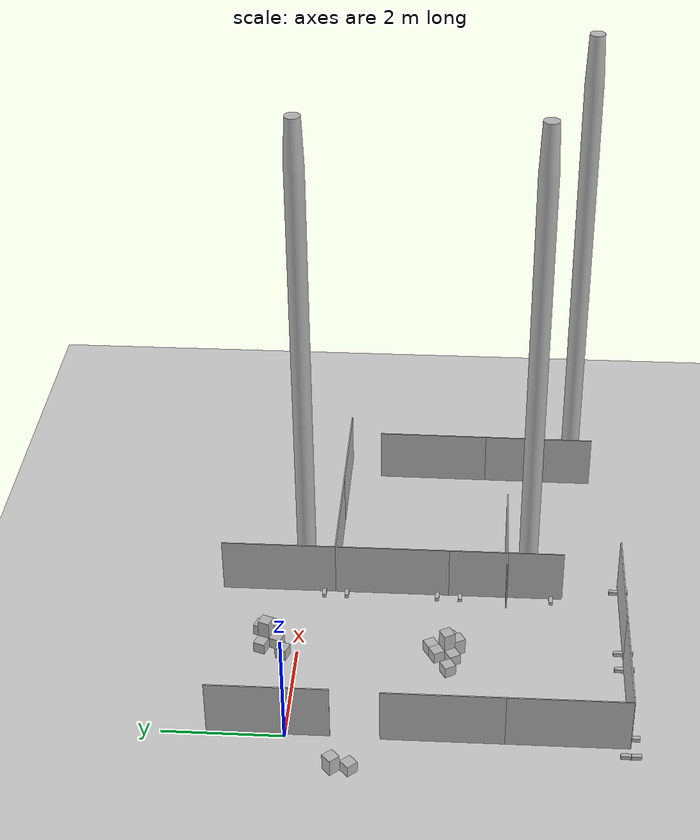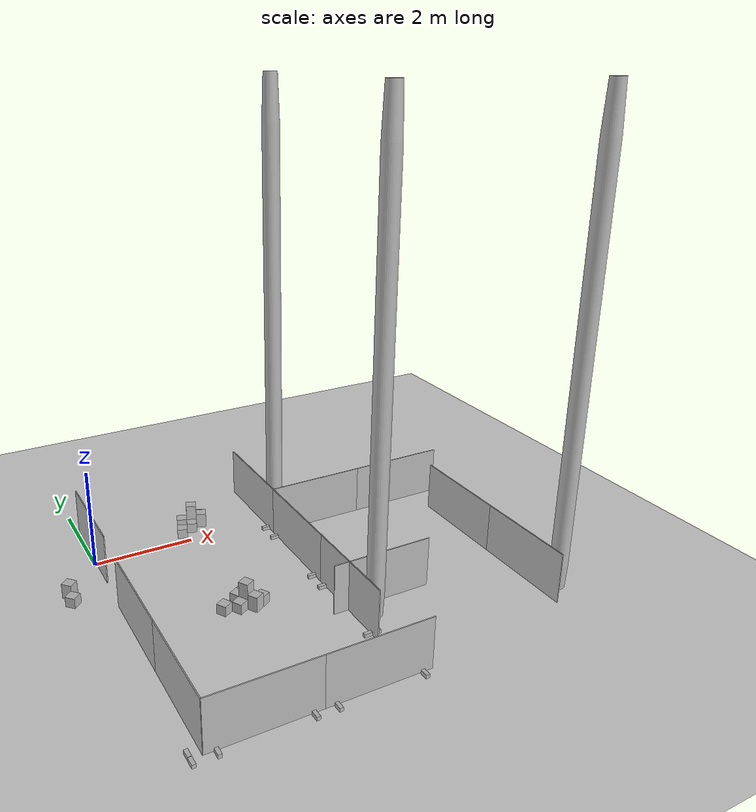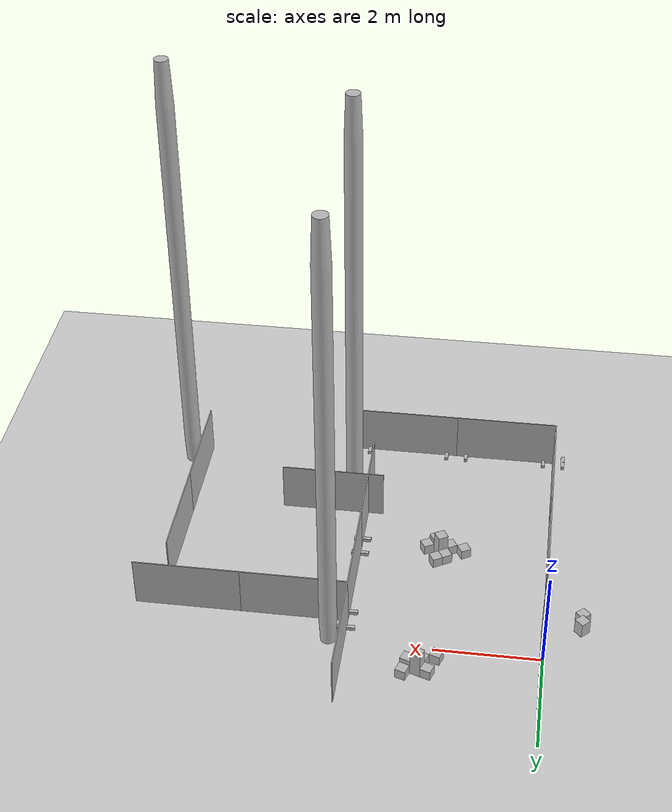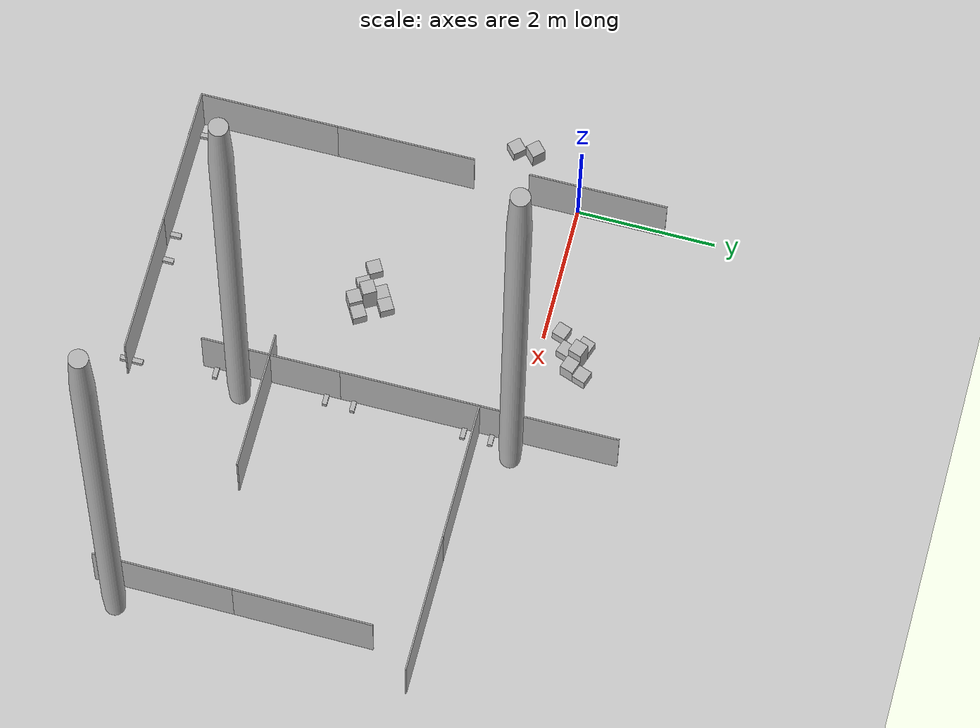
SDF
<sdf version="1.4">
 <world name="arena_HKT_14">
  <include><uri>model://ground_plane</uri></include>
  <include>
   <name>wall_2x1.587</name>
   <pose>6.619458198547363 -0.5330387353897095 0.5130000114440918  0.0 -0.0 -0.0007300376892089844</pose>
   <uri>model://wall_2x1</uri>
  </include>
  <include>
   <name>wall_2x1.588</name>
   <pose>3.6201891899108887 0.4691507816314697 0.5130000114440918  0.0 -0.0 1.5700664520263672</pose>
   <uri>model://wall_2x1</uri>
  </include>
  <include>
   <name>wall_2x1.589</name>
   <pose>3.617269515991211 -3.5308477878570557 0.5130000114440918  0.0 -0.0 1.5700664520263672</pose>
   <uri>model://wall_2x1</uri>
  </include>
  <include>
   <name>wall_2x1.590</name>
   <pose>3.6187291145324707 -1.530848503112793 0.5130000114440918  0.0 -0.0 1.5700664520263672</pose>
   <uri>model://wall_2x1</uri>
  </include>
  <include>
   <name>wall_2x1.591</name>
   <pose>4.61945915222168 -0.5315788388252258 0.5130000114440918  0.0 -0.0 -0.0007300376892089844</pose>
   <uri>model://wall_2x1</uri>
  </include>
  <include>
   <name>wall_stand.1286</name>
   <pose>3.61960506439209 -0.3313487768173218 0.03450000286102295  0.0 -0.0 -0.0007300376892089844</pose>
   <uri>model://wall_stand</uri>
  </include>
  <include>
   <name>wall_stand.1287</name>
   <pose>3.616685390472412 -4.331347465515137 0.03450000286102295  0.0 -0.0 -0.0007300376892089844</pose>
   <uri>model://wall_stand</uri>
  </include>
  <include>
   <name>wall_stand.1288</name>
   <pose>3.6178536415100098 -2.730348825454712 0.03450000286102295  0.0 -0.0 -0.0007300376892089844</pose>
   <uri>model://wall_stand</uri>
  </include>
  <include>
   <name>wall_stand.1289</name>
   <pose>3.6193137168884277 -0.7303485870361328 0.03450000286102295  0.0 -0.0 -0.0007300376892089844</pose>
   <uri>model://wall_stand</uri>
  </include>
  <include>
   <name>wall_stand.1290</name>
   <pose>3.618144989013672 -2.331348419189453 0.03450000286102295  0.0 -0.0 -0.0007300376892089844</pose>
   <uri>model://wall_stand</uri>
  </include>
  <include>
   <name>wall_2x1.593</name>
   <pose>0.010646045207977295 -2.5302858352661133 0.5130000114440918  0.0 -0.0 1.570796251296997</pose>
   <uri>model://wall_2x1</uri>
  </include>
  <include>
   <name>wall_2x1.595</name>
   <pose>3.010645627975464 -5.530285835266113 0.5130000114440918  0.0 -0.0 3.141592502593994</pose>
   <uri>model://wall_2x1</uri>
  </include>
  <include>
   <name>wall_2x1.596</name>
   <pose>1.010645866394043 -5.530285835266113 0.5130000114440918  0.0 -0.0 3.141592502593994</pose>
   <uri>model://wall_2x1</uri>
  </include>
  <include>
   <name>wall_2x1.597</name>
   <pose>0.010645806789398193 -4.530285835266113 0.5130000114440918  0.0 -0.0 1.570796251296997</pose>
   <uri>model://wall_2x1</uri>
  </include>
  <include>
   <name>wall_stand.1297</name>
   <pose>-0.18885427713394165 -5.530285835266113 0.03450000286102295  0.0 -0.0 1.570796251296997</pose>
   <uri>model://wall_stand</uri>
  </include>
  <include>
   <name>wall_stand.1298</name>
   <pose>3.811145544052124 -5.530285835266113 0.03450000286102295  0.0 -0.0 1.570796251296997</pose>
   <uri>model://wall_stand</uri>
  </include>
  <include>
   <name>wall_stand.1299</name>
   <pose>2.210145950317383 -5.530285835266113 0.03450000286102295  0.0 -0.0 1.570796251296997</pose>
   <uri>model://wall_stand</uri>
  </include>
  <include>
   <name>wall_stand.1300</name>
   <pose>0.21014565229415894 -5.530285835266113 0.03450000286102295  0.0 -0.0 1.570796251296997</pose>
   <uri>model://wall_stand</uri>
  </include>
  <include>
   <name>wall_stand.1301</name>
   <pose>1.8111457824707031 -5.530285835266113 0.03450000286102295  0.0 -0.0 1.570796251296997</pose>
   <uri>model://wall_stand</uri>
  </include>
  <include>
   <name>cube_20x20.1504</name>
   <pose>2.0343916416168213 0.613365888595581 0.10000000149011612  0.0 0.0 4.376082897186279</pose>
   <uri>model://cube_20x20</uri>
  </include>
  <include>
   <name>cube_20x20.1505</name>
   <pose>2.1571874618530273 0.358569860458374 0.10000000149011612  0.0 0.0 4.376082897186279</pose>
   <uri>model://cube_20x20</uri>
  </include>
  <include>
   <name>cube_20x20.1506</name>
   <pose>1.902390956878662 0.23577475547790527 0.10000000149011612  0.0 0.0 4.376082897186279</pose>
   <uri>model://cube_20x20</uri>
  </include>
  <include>
   <name>cube_20x20.1508</name>
   <pose>2.4779841899871826 0.6701610088348389 0.10000000149011612  0.0 0.0 4.376082897186279</pose>
   <uri>model://cube_20x20</uri>
  </include>
  <include>
   <name>cube_20x20.1509</name>
   <pose>2.0343916416168213 0.613365888595581 0.10000000149011612  0.0 0.0 4.376082897186279</pose>
   <uri>model://cube_20x20</uri>
  </include>
  <include>
   <name>cube_20x20.1510</name>
   <pose>2.1571874618530273 0.358569860458374 0.10000000149011612  0.0 0.0 4.376082897186279</pose>
   <uri>model://cube_20x20</uri>
  </include>
  <include>
   <name>cube_20x20.1511</name>
   <pose>1.902390956878662 0.23577475547790527 0.10000000149011612  0.0 0.0 4.376082897186279</pose>
   <uri>model://cube_20x20</uri>
  </include>
  <include>
   <name>cube_20x30.272</name>
   <pose>2.4119834899902344 0.4813649654388428 0.15000000596046448  0.0 0.0 4.376082897186279</pose>
   <uri>model://cube_20x30</uri>
  </include>
  <include>
   <name>cube_20x30.273</name>
   <pose>2.4119834899902344 0.4813649654388428 0.15000000596046448  0.0 0.0 4.376082897186279</pose>
   <uri>model://cube_20x30</uri>
  </include>
  <include>
   <name>cube_20x50.266</name>
   <pose>2.2231879234313965 0.5473649501800537 0.25  0.0 0.0 4.376082897186279</pose>
   <uri>model://cube_20x50</uri>
  </include>
  <include>
   <name>cube_20x50.267</name>
   <pose>2.2231879234313965 0.5473649501800537 0.25  0.0 0.0 4.376082897186279</pose>
   <uri>model://cube_20x50</uri>
  </include>
  <include>
   <name>cube_20x20.1520</name>
   <pose>-0.6963385343551636 -1.0838134288787842 0.10000000149011612  0.0 0.0 5.4528021812438965</pose>
   <uri>model://cube_20x20</uri>
  </include>
  <include>
   <name>cube_20x30.274</name>
   <pose>-0.6836188435554504 -0.8012573719024658 0.15000000596046448  0.0 0.0 5.4528021812438965</pose>
   <uri>model://cube_20x30</uri>
  </include>
  <include>
   <name>cube_20x30.275</name>
   <pose>-0.6836188435554504 -0.8012573719024658 0.15000000596046448  0.0 0.0 5.4528021812438965</pose>
   <uri>model://cube_20x30</uri>
  </include>
  <include>
   <name>wall_2x1.604</name>
   <pose>0.04136395454406738 0.2739219665527344 0.5130000114440918  0.0 -0.0 4.71238899230957</pose>
   <uri>model://wall_2x1</uri>
  </include>
  <include>
   <name>wall_2x1.605</name>
   <pose>4.3128767013549805 -3.5467369556427 0.5130000114440918  0.0 -0.0 6.2831854820251465</pose>
   <uri>model://wall_2x1</uri>
  </include>
  <include>
   <name>cube_20x20.1534</name>
   <pose>1.9727907180786133 -2.3717634677886963 0.10000000149011612  0.0 -0.0 3.6651763916015625</pose>
   <uri>model://cube_20x20</uri>
  </include>
  <include>
   <name>cube_20x20.1535</name>
   <pose>1.8995816707611084 -2.6449673175811768 0.10000000149011612  0.0 -0.0 3.6651763916015625</pose>
   <uri>model://cube_20x20</uri>
  </include>
  <include>
   <name>cube_20x20.1536</name>
   <pose>1.626377820968628 -2.5717580318450928 0.10000000149011612  0.0 -0.0 3.6651763916015625</pose>
   <uri>model://cube_20x20</uri>
  </include>
  <include>
   <name>cube_20x20.1537</name>
   <pose>2.1459975242614746 -2.271765947341919 0.10000000149011612  0.0 -0.0 3.6651763916015625</pose>
   <uri>model://cube_20x20</uri>
  </include>
  <include>
   <name>cube_20x20.1538</name>
   <pose>2.345992088317871 -2.6181790828704834 0.10000000149011612  0.0 -0.0 3.6651763916015625</pose>
   <uri>model://cube_20x20</uri>
  </include>
  <include>
   <name>cube_20x20.1539</name>
   <pose>1.9727907180786133 -2.3717634677886963 0.10000000149011612  0.0 -0.0 3.6651763916015625</pose>
   <uri>model://cube_20x20</uri>
  </include>
  <include>
   <name>cube_20x20.1540</name>
   <pose>1.8995816707611084 -2.6449673175811768 0.10000000149011612  0.0 -0.0 3.6651763916015625</pose>
   <uri>model://cube_20x20</uri>
  </include>
  <include>
   <name>cube_20x20.1541</name>
   <pose>1.626377820968628 -2.5717580318450928 0.10000000149011612  0.0 -0.0 3.6651763916015625</pose>
   <uri>model://cube_20x20</uri>
  </include>
  <include>
   <name>cube_20x20.1542</name>
   <pose>2.1459975242614746 -2.271765947341919 0.10000000149011612  0.0 -0.0 3.6651763916015625</pose>
   <uri>model://cube_20x20</uri>
  </include>
  <include>
   <name>cube_20x20.1543</name>
   <pose>2.345992088317871 -2.6181790828704834 0.10000000149011612  0.0 -0.0 3.6651763916015625</pose>
   <uri>model://cube_20x20</uri>
  </include>
  <include>
   <name>cube_20x30.278</name>
   <pose>2.1727852821350098 -2.7181766033172607 0.15000000596046448  0.0 -0.0 3.6651763916015625</pose>
   <uri>model://cube_20x30</uri>
  </include>
  <include>
   <name>cube_20x30.279</name>
   <pose>2.1727852821350098 -2.7181766033172607 0.15000000596046448  0.0 -0.0 3.6651763916015625</pose>
   <uri>model://cube_20x30</uri>
  </include>
  <include>
   <name>cube_20x50.272</name>
   <pose>2.0727880001068115 -2.5449702739715576 0.25  0.0 -0.0 3.6651763916015625</pose>
   <uri>model://cube_20x50</uri>
  </include>
  <include>
   <name>cube_20x50.273</name>
   <pose>2.0727880001068115 -2.5449702739715576 0.25  0.0 -0.0 3.6651763916015625</pose>
   <uri>model://cube_20x50</uri>
  </include>
  <include>
   <name>barrel_110l.106</name>
   <pose>7.4065985679626465 -4.747889041900635 0.0  0.0 0.0 0.0</pose>
   <uri>model://barrel_110l</uri>
  </include>
  <include>
   <name>barrel_110l.108</name>
   <pose>3.9336907863616943 -3.9148590564727783 0.0  0.0 0.0 0.0</pose>
   <uri>model://barrel_110l</uri>
  </include>
  <include>
   <name>barrel_110l.109</name>
   <pose>3.904625415802002 -0.004051387310028076 0.0  0.0 0.0 0.0</pose>
   <uri>model://barrel_110l</uri>
  </include>
  <include>
   <name>wall_2x1.608</name>
   <pose>7.101434230804443 -2.127796173095703 0.5130000114440918  0.0 0.0 7.846388816833496</pose>
   <uri>model://wall_2x1</uri>
  </include>
  <include>
   <name>wall_2x1.609</name>
   <pose>7.086248874664307 -4.127738952636719 0.5130000114440918  0.0 0.0 7.846388816833496</pose>
   <uri>model://wall_2x1</uri>
  </include>
 </world>
</sdf>
